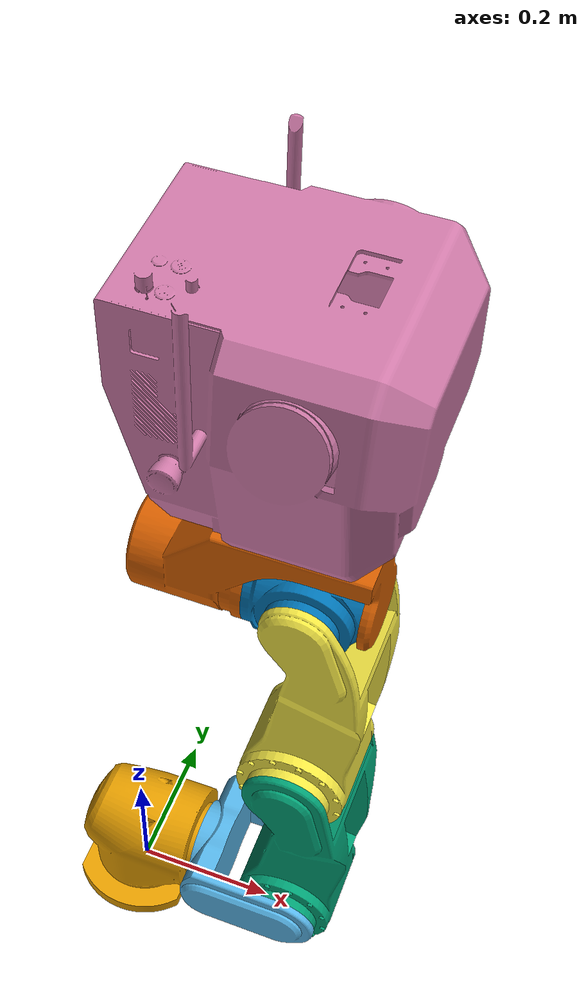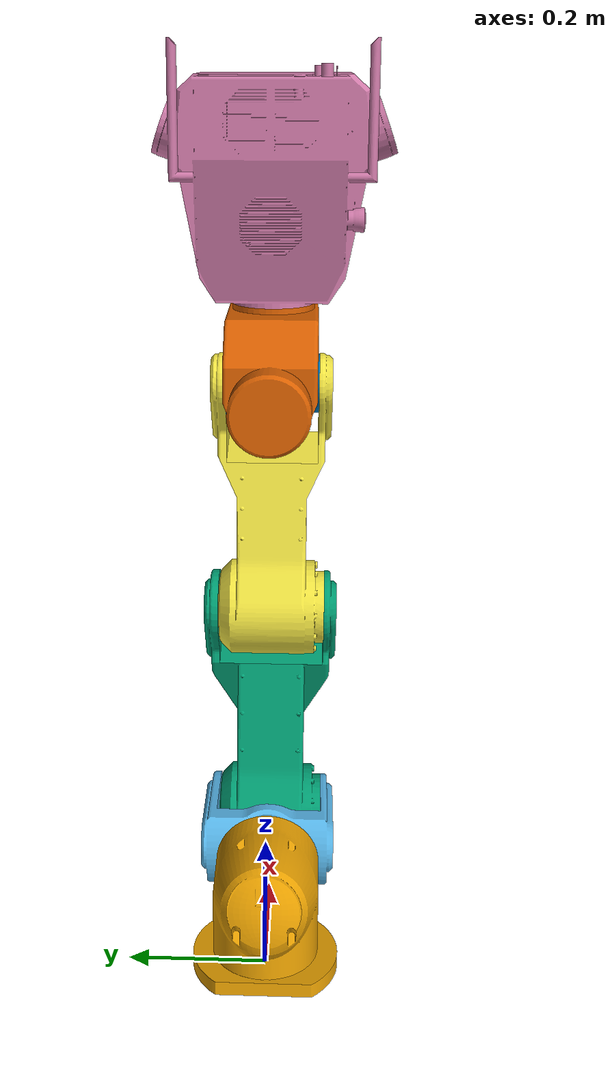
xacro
<?xml version="1.0"?>
<!-- Direct xacro translation of torso.urdf. -->
<robot xmlns:xacro="http://www.ros.org/wiki/xacro" name="rby1_torso">

  <xacro:arg name="mesh_root" default="ruby/rby1_description_drake/meshes"/>
  <xacro:property name="mesh_dir" value="$(arg mesh_root)"/>

  <!-- Links -->

  <link name="link_torso_base">
    <visual>
      <origin xyz="0 0 0" rpy="1.57079632679 0 0"/>
      <geometry>
        <mesh filename="${mesh_dir}/LINK_0.obj"/>
      </geometry>
    </visual>

    <collision>
      <origin xyz="0.047 0 0.112" rpy="0 0 0"/>
      <geometry>
        <sphere radius="0.09"/>
      </geometry>
    </collision>
    <collision>
      <origin xyz="0.007 0 0.022" rpy="0 0 0"/>
      <geometry>
        <sphere radius="0.11"/>
      </geometry>
    </collision>
    <collision>
      <origin xyz="-0.013 0 0.112" rpy="0 0 0"/>
      <geometry>
        <sphere radius="0.09"/>
      </geometry>
    </collision>
  </link>

  <link name="link_torso_0">
    <inertial>
      <mass value="2.24282123"/>
      <origin rpy="0 0 0" xyz="-0.08848415 0.00021367 0.00000046"/>
      <inertia ixx="0.01413496" ixy="0.00092982" ixz="-0.00000010" iyy="0.01005357"
        iyz="-0.00000008" izz="0.01892525"/>
    </inertial>

    <visual>
      <origin xyz="0 0 0" rpy="1.57079632679 0 0"/>
      <geometry>
        <mesh filename="${mesh_dir}/LINK_1.obj"/>
      </geometry>
    </visual>

    <collision>
      <origin xyz="-0.1 0.045 0" rpy="0 0 0"/>
      <geometry>
        <sphere radius="0.08"/>
      </geometry>
    </collision>
    <collision>
      <origin xyz="-0.1 -0.045 0" rpy="0 0 0"/>
      <geometry>
        <sphere radius="0.08"/>
      </geometry>
    </collision>
  </link>

  <link name="link_torso_1">
    <inertial>
      <mass value="9.72162676"/>
      <origin rpy="0 0 0" xyz="0.00728955 -0.01728522 0.06911380"/>
      <inertia ixx="0.14862640" ixy="-0.00142621" ixz="-0.00951385" iyy="0.13854733"
        iyz="-0.00975351" izz="0.02912982"/>
    </inertial>

    <visual>
      <origin xyz="0 0 0" rpy="1.57079632679 0 0"/>
      <geometry>
        <mesh filename="${mesh_dir}/LINK_2.obj"/>
      </geometry>
    </visual>

    <collision>
      <origin xyz="0 0 0" rpy="0 0 0"/>
      <geometry>
        <sphere radius="0.11"/>
      </geometry>
    </collision>

    <collision>
      <origin xyz="0.015 0 0.08" rpy="0 0 0"/>
      <geometry>
        <sphere radius="0.085"/>
      </geometry>
    </collision>

    <collision>
      <origin xyz="0.025 0.03 0.15" rpy="0 0 0"/>
      <geometry>
        <sphere radius="0.07"/>
      </geometry>
    </collision>
    <collision>
      <origin xyz="0.025 -0.03 0.15" rpy="0 0 0"/>
      <geometry>
        <sphere radius="0.07"/>
      </geometry>
    </collision>

    <collision>
      <origin xyz="0.025 0.04 0.22" rpy="0 0 0"/>
      <geometry>
        <sphere radius="0.07"/>
      </geometry>
    </collision>
    <collision>
      <origin xyz="0.025 -0.04 0.22" rpy="0 0 0"/>
      <geometry>
        <sphere radius="0.07"/>
      </geometry>
    </collision>

    <collision>
      <origin xyz="0.03 0.05 0.28" rpy="0 0 0"/>
      <geometry>
        <sphere radius="0.06"/>
      </geometry>
    </collision>
    <collision>
      <origin xyz="0.03 0 0.28" rpy="0 0 0"/>
      <geometry>
        <sphere radius="0.06"/>
      </geometry>
    </collision>
    <collision>
      <origin xyz="0.03 -0.05 0.28" rpy="0 0 0"/>
      <geometry>
        <sphere radius="0.06"/>
      </geometry>
    </collision>

    <collision>
      <origin xyz="0 0.05 0.35" rpy="0 0 0"/>
      <geometry>
        <sphere radius="0.08"/>
      </geometry>
    </collision>
    <collision>
      <origin xyz="0 -0.05 0.35" rpy="0 0 0"/>
      <geometry>
        <sphere radius="0.08"/>
      </geometry>
    </collision>
  </link>

  <link name="link_torso_2">
    <inertial>
      <mass value="9.21691850"/>
      <origin rpy="0 0 0" xyz="0.00653835 -0.01769536 0.05636582"/>
      <inertia ixx="0.12162270" ixy="-0.00127910" ixz="-0.00831678" iyy="0.11589190"
        iyz="-0.00873271" izz="0.03094484"/>
    </inertial>

    <visual>
      <origin xyz="0 0 0" rpy="1.57079632679 0 0"/>
      <geometry>
        <mesh filename="${mesh_dir}/LINK_3.obj"/>
      </geometry>
    </visual>

    <collision>
      <origin xyz="0 0 0" rpy="0 0 0"/>
      <geometry>
        <sphere radius="0.09"/>
      </geometry>
    </collision>

    <collision>
      <origin xyz="0.015 0 0.08" rpy="0 0 0"/>
      <geometry>
        <sphere radius="0.085"/>
      </geometry>
    </collision>

    <collision>
      <origin xyz="0.025 0.03 0.15" rpy="0 0 0"/>
      <geometry>
        <sphere radius="0.07"/>
      </geometry>
    </collision>
    <collision>
      <origin xyz="0.025 -0.03 0.15" rpy="0 0 0"/>
      <geometry>
        <sphere radius="0.07"/>
      </geometry>
    </collision>

    <collision>
      <origin xyz="0.025 0.04 0.22" rpy="0 0 0"/>
      <geometry>
        <sphere radius="0.07"/>
      </geometry>
    </collision>
    <collision>
      <origin xyz="0.025 -0.04 0.22" rpy="0 0 0"/>
      <geometry>
        <sphere radius="0.07"/>
      </geometry>
    </collision>

    <collision>
      <origin xyz="0.03 0.05 0.28" rpy="0 0 0"/>
      <geometry>
        <sphere radius="0.06"/>
      </geometry>
    </collision>
    <collision>
      <origin xyz="0.03 0 0.28" rpy="0 0 0"/>
      <geometry>
        <sphere radius="0.06"/>
      </geometry>
    </collision>
    <collision>
      <origin xyz="0.03 -0.05 0.28" rpy="0 0 0"/>
      <geometry>
        <sphere radius="0.06"/>
      </geometry>
    </collision>

    <collision>
      <origin xyz="0.005 0.05 0.35" rpy="0 0 0"/>
      <geometry>
        <sphere radius="0.06"/>
      </geometry>
    </collision>
    <collision>
      <origin xyz="0.005 -0.05 0.35" rpy="0 0 0"/>
      <geometry>
        <sphere radius="0.06"/>
      </geometry>
    </collision>
  </link>

  <link name="link_torso_3">
    <inertial>
      <mass value="4.18679196"/>
      <origin rpy="0 0 0" xyz="-0.00574156 -0.01725975 0.00005610"/>
      <inertia ixx="0.00849870" ixy="0.00040861" ixz="-0.00000263" iyy="0.00929513"
        iyz="-0.00001243" izz="0.00955442"/>
    </inertial>

    <visual>
      <origin xyz="0 0 0" rpy="1.57079632679 0 0"/>
      <geometry>
        <mesh filename="${mesh_dir}/LINK_4.obj"/>
      </geometry>
    </visual>

    <!-- Note: no collision geometry, as this is entirely covered by other links. -->
  </link>

  <link name="link_torso_4">
    <inertial>
      <mass value="4.45566276"/>
      <origin rpy="0 0 0" xyz="-0.09097095 0.00005085 0.02601950"/>
      <inertia ixx="0.01545991" ixy="0.00001883" ixz="-0.00780349" iyy="0.02550888" iyz="0.00000715"
        izz="0.01952563"/>
    </inertial>

    <visual>
      <origin xyz="0 0 0" rpy="1.57079632679 0 0"/>
      <geometry>
        <mesh filename="${mesh_dir}/LINK_5.obj"/>
      </geometry>
    </visual>

    <collision>
      <origin xyz="0 0 0.03" rpy="0 0 0"/>
      <geometry>
        <sphere radius="0.105"/>
      </geometry>
    </collision>
    <collision>
      <origin xyz="-0.05 0 0.03" rpy="0 0 0"/>
      <geometry>
        <sphere radius="0.1"/>
      </geometry>
    </collision>
    <collision>
      <origin xyz="-0.1 0 0.03" rpy="0 0 0"/>
      <geometry>
        <sphere radius="0.1"/>
      </geometry>
    </collision>
    <collision>
      <origin xyz="-0.17 0 0" rpy="0 0 0"/>
      <geometry>
        <sphere radius="0.07"/>
      </geometry>
    </collision>
  </link>

  <link name="link_torso_5">
    <!-- Estimated inertia from Rainbow mass estimate: 32kg uniform-density sphere, r=0.15. -->
    <inertial>
      <mass value="32.0"/>
      <origin rpy="0 0 0" xyz="-0.01338376 0.00025621 -0.03272487"/>
      <inertia ixx="0.288" ixy="0.0" ixz="0.0" iyy="0.288" iyz="0.0" izz="0.288"/>
    </inertial>

    <visual>
      <origin xyz="0 0 0" rpy="1.57079632679 0 0"/>
      <geometry>
        <mesh filename="${mesh_dir}/LINK_6.obj"/>
      </geometry>
    </visual>

    <collision>
      <origin xyz="0 0 0.025" rpy="0 0 0"/>
      <geometry>
        <sphere radius="0.16"/>
      </geometry>
    </collision>
    <collision>
      <origin xyz="-0.01 0 -0.1" rpy="0 0 0"/>
      <geometry>
        <sphere radius="0.13"/>
      </geometry>
    </collision>

    <collision>
      <origin xyz="-0.12 0 0.06" rpy="0 0 0"/>
      <geometry>
        <sphere radius="0.13"/>
      </geometry>
    </collision>
    <collision>
      <origin xyz="-0.1 0 -0.01" rpy="0 0 0"/>
      <geometry>
        <sphere radius="0.13"/>
      </geometry>
    </collision>
    <collision>
      <origin xyz="-0.09 0 -0.08" rpy="0 0 0"/>
      <geometry>
        <sphere radius="0.12"/>
      </geometry>
    </collision>
  </link>

  <!-- Joints -->

  <joint name="torso_0" type="revolute">
    <parent link="link_torso_base"/>
    <child link="link_torso_0"/>
    <origin rpy="0.0 0.0 0.0" xyz="0.247 0.0 0.1125"/>
    <axis xyz="1 0 0"/>
    <limit effort="1000.0" lower="-0.34906585" upper="0.34906585" velocity="3.14159265"/>
  </joint>

  <joint name="torso_1" type="revolute">
    <parent link="link_torso_0"/>
    <child link="link_torso_1"/>
    <origin rpy="0.0 0.0 0.0" xyz="0.0 0.0 0.0"/>
    <axis xyz="0 1 0"/>
    <limit effort="1000.0" lower="-1.04719755" upper="1.52173048" velocity="3.14159265"/>
  </joint>

  <joint name="torso_2" type="revolute">
    <parent link="link_torso_1"/>
    <child link="link_torso_2"/>
    <origin rpy="0.0 0.0 0.0" xyz="0.0 0.0 0.350"/>
    <axis xyz="0 1 0"/>
    <limit effort="1000.0" lower="-2.478367" upper="1.570796" velocity="3.14159265"/>
  </joint>

  <joint name="torso_3" type="revolute">
    <parent link="link_torso_2"/>
    <child link="link_torso_3"/>
    <origin rpy="0.0 0.0 0.0" xyz="0.0 0.0 0.350"/>
    <axis xyz="0 1 0"/>
    <limit effort="1000.0" lower="-0.78539816" upper="1.57079633" velocity="3.14159265"/>
  </joint>

  <joint name="torso_4" type="revolute">
    <parent link="link_torso_3"/>
    <child link="link_torso_4"/>
    <origin rpy="0.0 0.0 0.0" xyz="0.0 0.0 0.0"/>
    <axis xyz="1 0 0"/>
    <limit effort="1000.0" lower="-0.52359878" upper="0.52359878" velocity="3.14159265"/>
  </joint>

  <joint name="torso_5" type="revolute">
    <parent link="link_torso_4"/>
    <child link="link_torso_5"/>
    <origin rpy="0.0 0.0 0.0" xyz="0.0 0.0 0.309426548461"/>
    <axis xyz="0 0 1"/>
    <limit effort="1000.0" lower="-1.57079633" upper="1.57079633" velocity="3.14159265"/>
  </joint>

  <!-- Transmissions -->

  <transmission name="torso_0_transmission">
    <type>transmission_interface/SimpleTransmission</type>
    <joint name="torso_0">
      <hardwareInterface>PositionJointInterface</hardwareInterface>
    </joint>
    <actuator name="torso_0_motor">
      <hardwareInterface>PositionJointInterface</hardwareInterface>
      <mechanicalReduction>1</mechanicalReduction>
    </actuator>
  </transmission>

  <transmission name="torso_1_transmission">
    <type>transmission_interface/SimpleTransmission</type>
    <joint name="torso_1">
      <hardwareInterface>PositionJointInterface</hardwareInterface>
    </joint>
    <actuator name="torso_1_motor">
      <hardwareInterface>PositionJointInterface</hardwareInterface>
      <mechanicalReduction>1</mechanicalReduction>
    </actuator>
  </transmission>

  <transmission name="torso_2_transmission">
    <type>transmission_interface/SimpleTransmission</type>
    <joint name="torso_2">
      <hardwareInterface>PositionJointInterface</hardwareInterface>
    </joint>
    <actuator name="torso_2_motor">
      <hardwareInterface>PositionJointInterface</hardwareInterface>
      <mechanicalReduction>1</mechanicalReduction>
    </actuator>
  </transmission>

  <transmission name="torso_3_transmission">
    <type>transmission_interface/SimpleTransmission</type>
    <joint name="torso_3">
      <hardwareInterface>PositionJointInterface</hardwareInterface>
    </joint>
    <actuator name="torso_3_motor">
      <hardwareInterface>PositionJointInterface</hardwareInterface>
      <mechanicalReduction>1</mechanicalReduction>
    </actuator>
  </transmission>

  <transmission name="torso_4_transmission">
    <type>transmission_interface/SimpleTransmission</type>
    <joint name="torso_4">
      <hardwareInterface>PositionJointInterface</hardwareInterface>
    </joint>
    <actuator name="torso_4_motor">
      <hardwareInterface>PositionJointInterface</hardwareInterface>
      <mechanicalReduction>1</mechanicalReduction>
    </actuator>
  </transmission>

  <transmission name="torso_5_transmission">
    <type>transmission_interface/SimpleTransmission</type>
    <joint name="torso_5">
      <hardwareInterface>PositionJointInterface</hardwareInterface>
    </joint>
    <actuator name="torso_5_motor">
      <hardwareInterface>PositionJointInterface</hardwareInterface>
      <mechanicalReduction>1</mechanicalReduction>
    </actuator>
  </transmission>

</robot>
